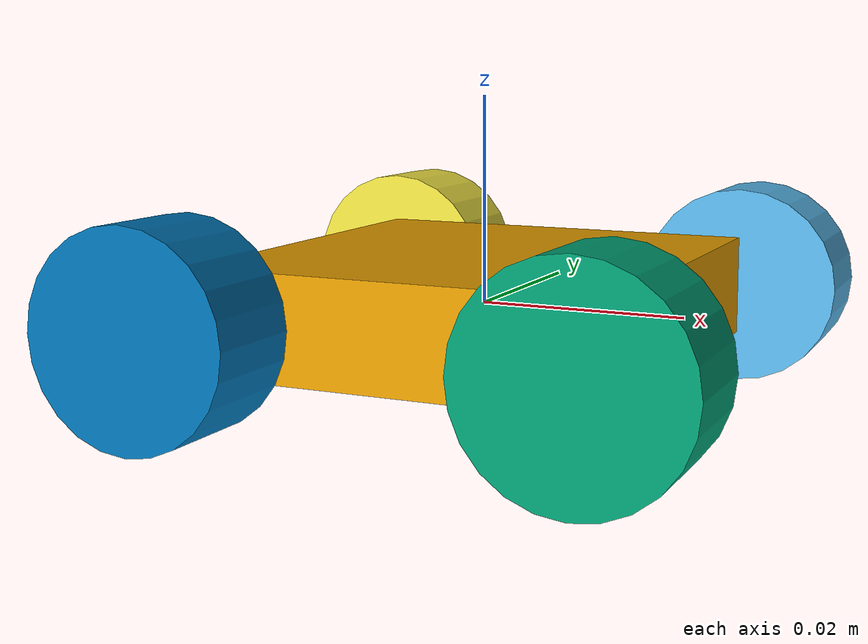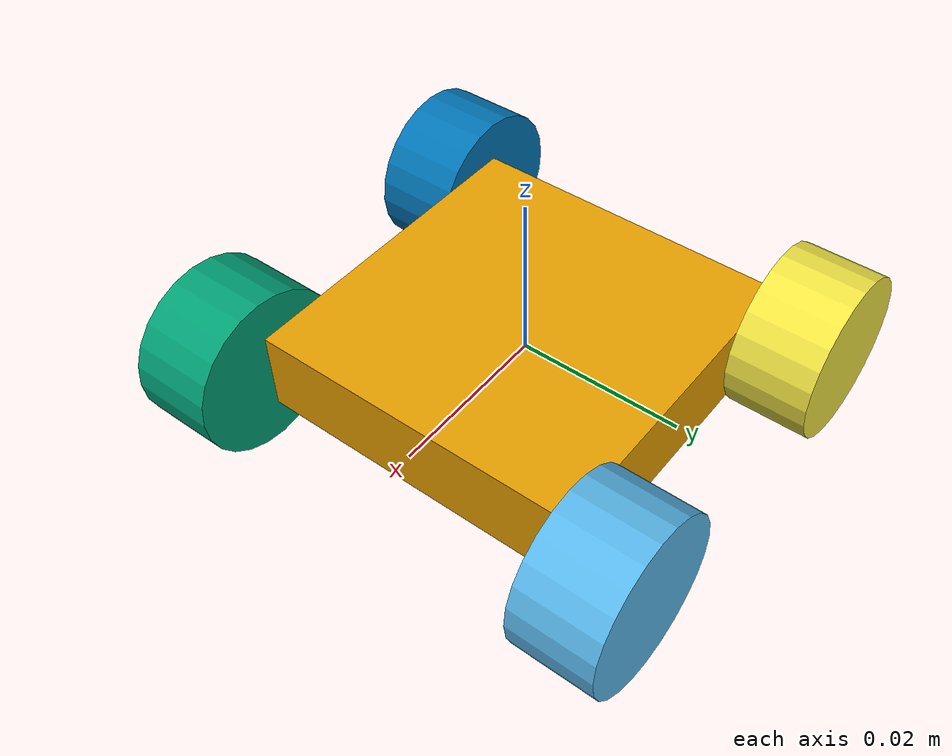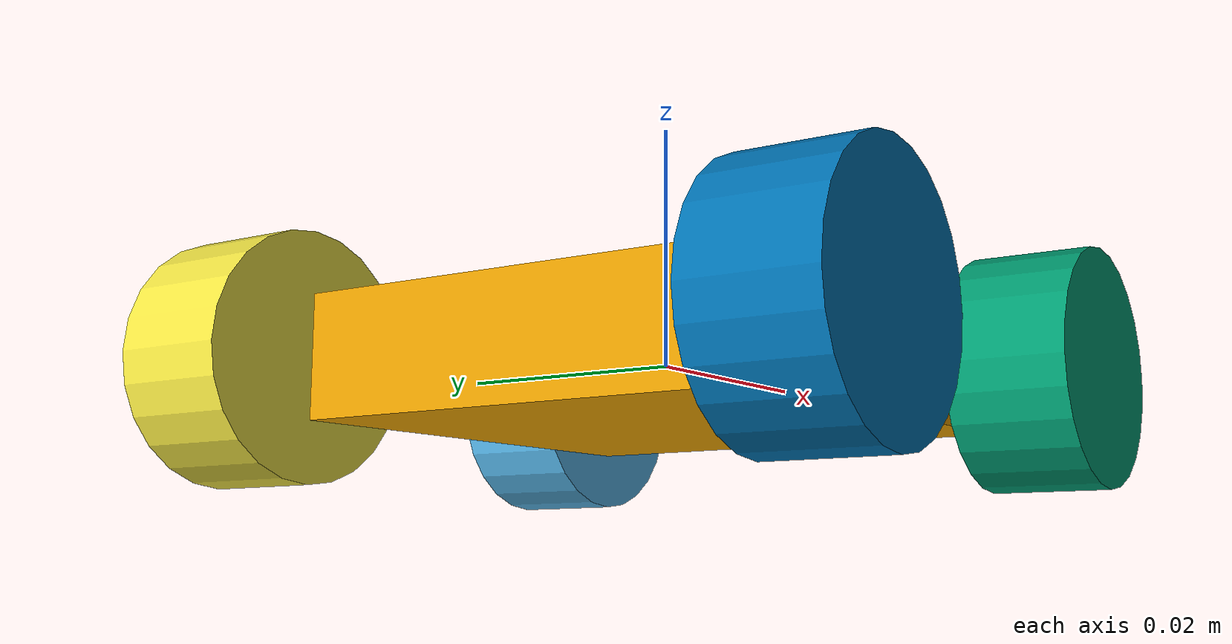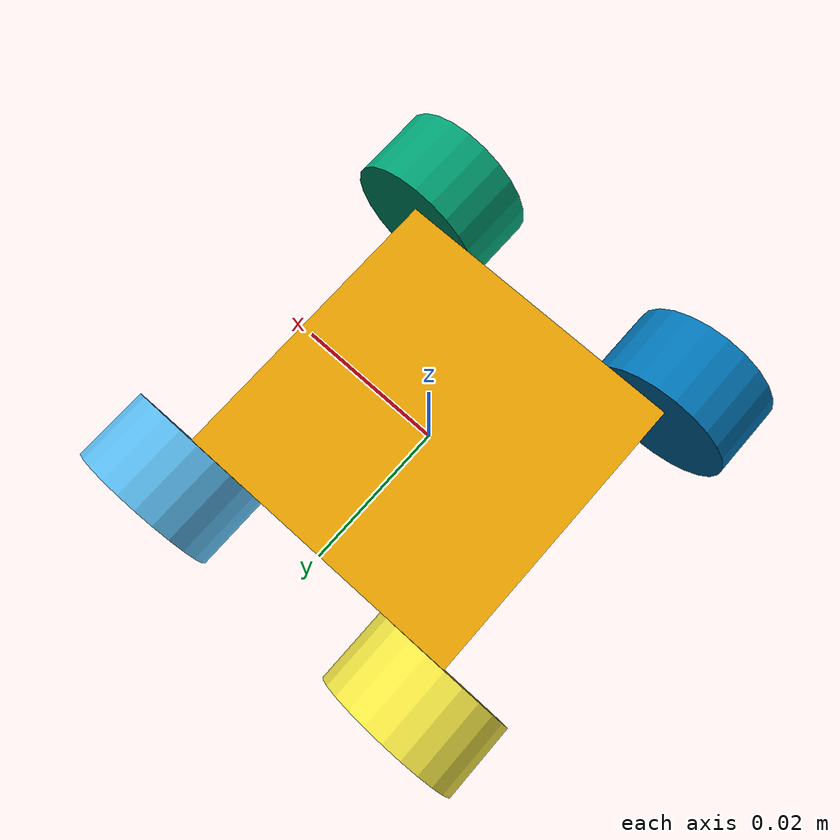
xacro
<?xml version="1.0"?>
<robot name="mecanum_robot">

  <!-- Base Link -->
  <link name="base_link">
    <visual>
      <geometry>
        <box size="0.04 0.04 0.01"/> <!-- 40mm square base, 10mm height -->
      </geometry>
    </visual>
    <inertial>
      <mass value="1.0"/> <!-- Adjust based on actual mass -->
      <inertia ixx="0.001" ixy="0.0" ixz="0.0" iyy="0.001" iyz="0.0" izz="0.001"/> <!-- Simplified, adjust for your robot -->
    </inertial>
  </link>

<!-- Joints -->
<!-- Adjusted for wheel orientation with axes parallel to the ground and placed outside the base -->
<joint name="joint_front_left_wheel" type="continuous">
  <parent link="base_link"/>
  <child link="wheel_front_left"/>
  <origin xyz="0.02 0.025 0.0" rpy="1.5708 0 0"/>
  <axis xyz="0 0 1"/>
</joint>

<joint name="joint_front_right_wheel" type="continuous">
  <parent link="base_link"/>
  <child link="wheel_front_right"/>
  <origin xyz="0.02 -0.025 0.0" rpy="-1.5708 0 0"/>
  <axis xyz="0 0 1"/>
</joint>

<joint name="joint_rear_left_wheel" type="continuous">
  <parent link="base_link"/>
  <child link="wheel_rear_left"/>
  <origin xyz="-0.02 0.025 0.0" rpy="-1.5708 0 0"/>
  <axis xyz="0 0 -1"/>
</joint>

<joint name="joint_rear_right_wheel" type="continuous">
  <parent link="base_link"/>
  <child link="wheel_rear_right"/>
  <origin xyz="-0.02 -0.025 0.0" rpy="1.5708 0 0"/>
  <axis xyz="0 0 -1"/>
</joint>

  <!-- Wheels -->
<!-- Wheel Links Definitions -->
<link name="wheel_front_left">
  <visual>
    <geometry>
      <cylinder radius="0.01" length="0.01"/> <!-- Example dimensions; adjust as needed -->
    </geometry>
  </visual>
  <inertial>
    <mass value="0.1"/>
    <inertia ixx="0.0001" ixy="0.0" ixz="0.0" iyy="0.0001" iyz="0.0" izz="0.0001"/>
  </inertial>
</link>

<link name="wheel_front_right">
  <visual>
    <geometry>
      <cylinder radius="0.01" length="0.01"/>
    </geometry>
  </visual>
  <inertial>
    <mass value="0.1"/>
    <inertia ixx="0.0001" ixy="0.0" ixz="0.0" iyy="0.0001" iyz="0.0" izz="0.0001"/>
  </inertial>
</link>

<link name="wheel_rear_left">
  <visual>
    <geometry>
      <cylinder radius="0.01" length="0.01"/>
    </geometry>
  </visual>
  <inertial>
    <mass value="0.1"/>
    <inertia ixx="0.0001" ixy="0.0" ixz="0.0" iyy="0.0001" iyz="0.0" izz="0.0001"/>
  </inertial>
</link>

<link name="wheel_rear_right">
  <visual>
    <geometry>
      <cylinder radius="0.01" length="0.01"/>
    </geometry>
  </visual>
  <inertial>
    <mass value="0.1"/>
    <inertia ixx="0.0001" ixy="0.0" ixz="0.0" iyy="0.0001" iyz="0.0" izz="0.0001"/>
  </inertial>
</link>

</robot>
